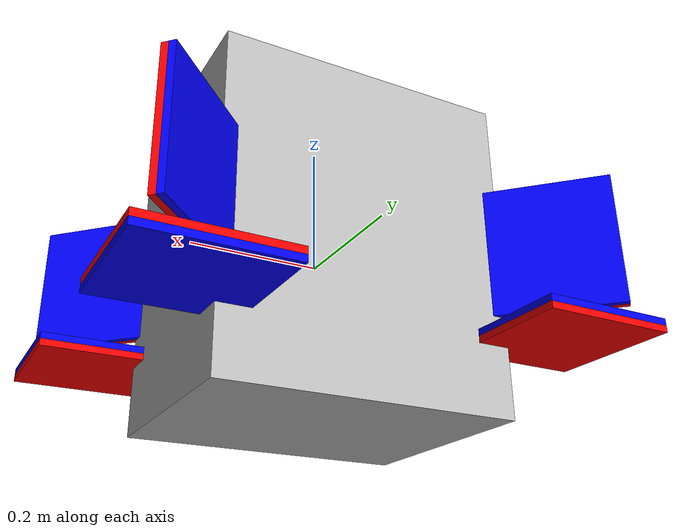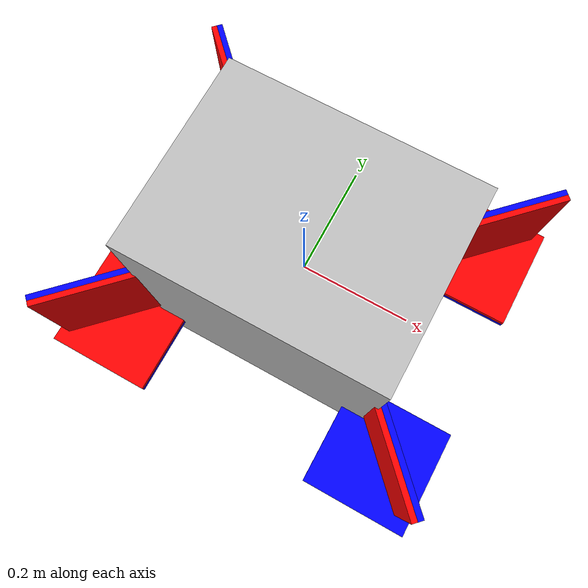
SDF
<?xml version="1.0" ?>
<sdf version="1.6">
	<model name="auv">

        <link name='base_link'>
            <pose>0 0 0 0 0 0</pose>
			<inertial>
				<mass>995.2</mass>
				<inertia>
				<ixx>3.000000</ixx>
				<ixy>0.000000</ixy>
				<ixz>0.000000</ixz>
				<iyy>3.000000</iyy>
				<iyz>0.000000</iyz>
				<izz>3.000000</izz>
				</inertia>
			</inertial>
            <visual name='base_visual'>
                <geometry>
                    <box>
                        <size>0.444 0.34 0.5</size>
                    </box>
                </geometry>
            </visual>
            <collision name='base_collision'>
                <geometry>
                    <box>
                        <size>1 1 1</size>
                    </box>
                </geometry>
            </collision>
			<sensor name="imu_sensor" type="imu">
				<always_on>1</always_on>
				<update_rate>1</update_rate>
				<visualize>true</visualize>
				<topic>imu</topic>
			</sensor>
            <sensor name="depth_sensor" type="altimeter">
                <always_on>1</always_on>
				<update_rate>1</update_rate>
				<visualize>true</visualize>
				<topic>depth</topic>
            </sensor>
        </link>

        <!-- Thruster Links -->
        <link name='box_1'>
            <pose>-0.272 -0.22 -0.14 0 0 0</pose> <!-- Position adjustment needed -->
            <visual name="visual_side_1">
                <geometry>
                    <box>
                        <size>0.2 0.2 0.01</size>
                    </box>
                </geometry>
                <material>
                    <ambient>1 0 0 1</ambient>  <!-- Red color -->
                    <diffuse>1 0 0 1</diffuse>
                </material>
            </visual>
            <visual name="visual_side_2">
                <pose>0 0 -0.01 0 0 0</pose>
                <geometry>
                    <box>
                        <size>0.2 0.2 0.01</size>
                    </box>
                </geometry>
                <material>
                    <ambient>0 0 1 1</ambient>  <!-- Blue color -->
                    <diffuse>0 0 1 1</diffuse>
                </material>
            </visual>
            <collision name="collision">
                <geometry>
                    <box>
                        <size>0.2 0.01 0.2</size>
                    </box>
                </geometry>
            </collision>
        </link>

        <link name='box_2'>
            <pose>0.272 -0.22 -0.14 3.1415926536 0 0</pose> <!-- Position adjustment needed -->
            <visual name="visual_side_1">
                <geometry>
                    <box>
                        <size>0.2 0.2 0.01</size>
                    </box>
                </geometry>
                <material>
                    <ambient>1 0 0 1</ambient>  <!-- Red color -->
                    <diffuse>1 0 0 1</diffuse>
                </material>
            </visual>
            <visual name="visual_side_2">
                <pose>0 0 -0.01 0 0 0</pose>
                <geometry>
                    <box>
                        <size>0.2 0.2 0.01</size>
                    </box>
                </geometry>
                <material>
                    <ambient>0 0 1 1</ambient>  <!-- Blue color -->
                    <diffuse>0 0 1 1</diffuse>
                </material>
            </visual>
            <collision name="collision">
                <geometry>
                    <box>
                        <size>0.2 0.01 0.2</size>
                    </box>
                </geometry>
            </collision>
        </link>

        <link name='box_3'>
            <pose>0.272 0.22 -0.14 0 0 0</pose> <!-- Position adjustment needed -->
            <visual name="visual_side_1">
                <geometry>
                    <box>
                        <size>0.2 0.2 0.01</size>
                    </box>
                </geometry>
                <material>
                    <ambient>1 0 0 1</ambient>  <!-- Red color -->
                    <diffuse>1 0 0 1</diffuse>
                </material>
            </visual>
            <visual name="visual_side_2">
                <pose>0 0 -0.01 0 0 0</pose>
                <geometry>
                    <box>
                        <size>0.2 0.2 0.01</size>
                    </box>
                </geometry>
                <material>
                    <ambient>0 0 1 1</ambient>  <!-- Blue color -->
                    <diffuse>0 0 1 1</diffuse>
                </material>
            </visual>
            <collision name="collision">
                <geometry>
                    <box>
                        <size>0.2 0.01 0.2</size>
                    </box>
                </geometry>
            </collision>
        </link>

        <link name='box_4'>
            <pose>-0.272 0.22 -0.14 3.1415926536 0 0</pose> <!-- Position adjustment needed -->
            <visual name="visual_side_1">
                <geometry>
                    <box>
                        <size>0.2 0.2 0.01</size>
                    </box>
                </geometry>
                <material>
                    <ambient>1 0 0 1</ambient>  <!-- Red color -->
                    <diffuse>1 0 0 1</diffuse>
                </material>
            </visual>
            <visual name="visual_side_2">
                <pose>0 0 -0.01 0 0 0</pose>
                <geometry>
                    <box>
                        <size>0.2 0.2 0.01</size>
                    </box>
                </geometry>
                <material>
                    <ambient>0 0 1 1</ambient>  <!-- Blue color -->
                    <diffuse>0 0 1 1</diffuse>
                </material>
            </visual>
            <collision name="collision">
                <geometry>
                    <box>
                        <size>0.2 0.01 0.2</size>
                    </box>
                </geometry>
            </collision>
        </link>

		<link name='box_5'>
            <pose>-0.272 0.22 0 0 1.5707963268 -2.3561944902</pose> <!-- Position adjustment needed -->
            <visual name="visual_side_1">
                <geometry>
                    <box>
                        <size>0.2 0.2 0.01</size>
                    </box>
                </geometry>
                <material>
                    <ambient>1 0 0 1</ambient>  <!-- Red color -->
                    <diffuse>1 0 0 1</diffuse>
                </material>
            </visual>
            <visual name="visual_side_2">
                <pose>0 0 -0.01 0 0 0</pose>
                <geometry>
                    <box>
                        <size>0.2 0.2 0.01</size>
                    </box>
                </geometry>
                <material>
                    <ambient>0 0 1 1</ambient>  <!-- Blue color -->
                    <diffuse>0 0 1 1</diffuse>
                </material>
            </visual>
            <collision name="collision">
                <geometry>
                    <box>
                        <size>0.2 0.01 0.2</size>
                    </box>
                </geometry>
            </collision>
        </link>

        <link name='box_6'>
            <pose>-0.272 -0.22 0 3.1415926536 1.5707963268 2.3561944902</pose> <!-- Position adjustment needed -->
            <visual name="visual_side_1">
                <geometry>
                    <box>
                        <size>0.2 0.2 0.01</size>
                    </box>
                </geometry>
                <material>
                    <ambient>1 0 0 1</ambient>  <!-- Red color -->
                    <diffuse>1 0 0 1</diffuse>
                </material>
            </visual>
            <visual name="visual_side_2">
                <pose>0 0 -0.01 0 0 0</pose>
                <geometry>
                    <box>
                        <size>0.2 0.2 0.01</size>
                    </box>
                </geometry>
                <material>
                    <ambient>0 0 1 1</ambient>  <!-- Blue color -->
                    <diffuse>0 0 1 1</diffuse>
                </material>
            </visual>
            <collision name="collision">
                <geometry>
                    <box>
                        <size>0.2 0.01 0.2</size>
                    </box>
                </geometry>
            </collision>
        </link>

        <link name="box_7">
            <pose>0.272 -0.22 0 0 1.5707963268 -2.3561944902</pose>
            <visual name="visual_side_1">
                <geometry>
                    <box>
                        <size>0.2 0.2 0.01</size>
                    </box>
                </geometry>
                <material>
                    <ambient>1 0 0 1</ambient>  <!-- Red color -->
                    <diffuse>1 0 0 1</diffuse>
                </material>
            </visual>
            <visual name="visual_side_2">
                <pose>0 0 -0.01 0 0 0</pose>
                <geometry>
                    <box>
                        <size>0.2 0.2 0.01</size>
                    </box>
                </geometry>
                <material>
                    <ambient>0 0 1 1</ambient>  <!-- Blue color -->
                    <diffuse>0 0 1 1</diffuse>
                </material>
            </visual>
            <collision name="collision">
                <geometry>
                    <box>
                        <size>0.2 0.01 0.2</size>
                    </box>
                </geometry>
            </collision>
        </link>

		<link name='box_8'>
            <pose>0.272 0.22 0 3.1415926536 1.5707963268 2.3561944902</pose> <!-- Position adjustment needed -->
            <visual name="visual_side_1">
                <geometry>
                    <box>
                        <size>0.2 0.2 0.01</size>
                    </box>
                </geometry>
                <material>
                    <ambient>1 0 0 1</ambient>  <!-- Red color -->
                    <diffuse>1 0 0 1</diffuse>
                </material>
            </visual>
            <visual name="visual_side_2">
                <pose>0 0 -0.01 0 0 0</pose>
                <geometry>
                    <box>
                        <size>0.2 0.2 0.01</size>
                    </box>
                </geometry>
                <material>
                    <ambient>0 0 1 1</ambient>  <!-- Blue color -->
                    <diffuse>0 0 1 1</diffuse>
                </material>
            </visual>
            <collision name="collision">
                <geometry>
                    <box>
                        <size>0.2 0.01 0.2</size>
                    </box>
                </geometry>
            </collision>
        </link>

		<!-- Thruster Joints -->
		<joint name='thruster_1' type='revolute'>
			<pose>0 0 0 0 0 0</pose>
			<parent>base_link</parent>
			<child>box_1</child>
			<axis>
				<xyz>0 0 1</xyz>
                <use_parent_model_frame>1</use_parent_model_frame>
				<limit>
					<lower>-1e+12</lower>
					<upper>1e+12</upper>
					<effort>-1</effort>
					<velocity>-1</velocity>
				</limit>
			</axis>
		</joint>

		<joint name='thruster_2' type='revolute'>
			<pose>0 0 0 0 0 0</pose>
			<parent>base_link</parent>
			<child>box_2</child>
			<axis>
				<xyz>0 0 -1</xyz>
                <use_parent_model_frame>1</use_parent_model_frame>
				<limit>
					<lower>-1e+12</lower>
					<upper>1e+12</upper>
					<effort>-1</effort>
					<velocity>-1</velocity>
				</limit>
			</axis>
		</joint>

		<joint name='thruster_3' type='revolute'>
			<pose>0 0 0 0 0 0</pose>
			<parent>base_link</parent>
			<child>box_3</child>
			<axis>
				<xyz>0 0 1</xyz>
                <use_parent_model_frame>1</use_parent_model_frame>
				<limit>
					<lower>-1e+12</lower>
					<upper>1e+12</upper>
					<effort>-1</effort>
					<velocity>-1</velocity>
				</limit>
			</axis>
		</joint>

		<joint name='thruster_4' type='revolute'>
			<pose>0 0 0 0 0 0</pose>
			<parent>base_link</parent>
			<child>box_4</child>
			<axis>
				<xyz>0 0 -1</xyz>
                <use_parent_model_frame>1</use_parent_model_frame>
				<limit>
					<lower>-1e+12</lower>
					<upper>1e+12</upper>
					<effort>-1</effort>
					<velocity>-1</velocity>
				</limit>
			</axis>
		</joint>

		<joint name='thruster_5' type='revolute'>
			<pose>0 0 0 0 0 0</pose>
			<parent>base_link</parent>
			<child>box_5</child>
			<axis>
				<xyz>-1 -1 0</xyz>
                <use_parent_model_frame>1</use_parent_model_frame>
				<limit>
					<lower>-1e+12</lower>
					<upper>1e+12</upper>
					<effort>-1</effort>
					<velocity>-1</velocity>
				</limit>
			</axis>
		</joint>

		<joint name='thruster_6' type='revolute'>
			<pose>0 0 0 0 0 0</pose>
			<parent>base_link</parent>
			<child>box_6</child>
			<axis>
				<xyz>1 -1 0</xyz>
                <use_parent_model_frame>1</use_parent_model_frame>
				<limit>
					<lower>-1e+12</lower>
					<upper>1e+12</upper>
					<effort>-1</effort>
					<velocity>-1</velocity>
				</limit>
			</axis>
		</joint>

		<joint name='thruster_7' type='revolute'>
			<pose>0 0 0 0 0 0</pose>
			<parent>base_link</parent>
			<child>box_7</child>
			<axis>
				<xyz>-1 -1 0</xyz>
                <use_parent_model_frame>1</use_parent_model_frame>
				<limit>
					<lower>-1e+12</lower>
					<upper>1e+12</upper>
					<effort>-1</effort>
					<velocity>-1</velocity>
				</limit>
			</axis>
		</joint>

		<joint name='thruster_8' type='revolute'>
			<pose>0 0 0 0 0 0</pose>
			<parent>base_link</parent>
			<child>box_8</child>
			<axis>
				<xyz>1 -1 0</xyz>
                <use_parent_model_frame>1</use_parent_model_frame>
				<limit>
					<lower>-1e+12</lower>
					<upper>1e+12</upper>
					<effort>-1</effort>
					<velocity>-1</velocity>
				</limit>
			</axis>
		</joint>

        <plugin
            filename="gz-sim-pose-publisher-system"
            name="gz::sim::systems::PosePublisher">
            <publish_model_pose>true</publish_model_pose>
            <publish_link_pose>false</publish_link_pose>
            <publish_visual_pose>false</publish_visual_pose>
            <publish_collision_pose>false</publish_collision_pose>
            <publish_sensor_pose>false</publish_sensor_pose>
            <publish_nested_model_pose>true</publish_nested_model_pose>
            <update_frequency>1000</update_frequency>
        </plugin>
	</model>
</sdf>
